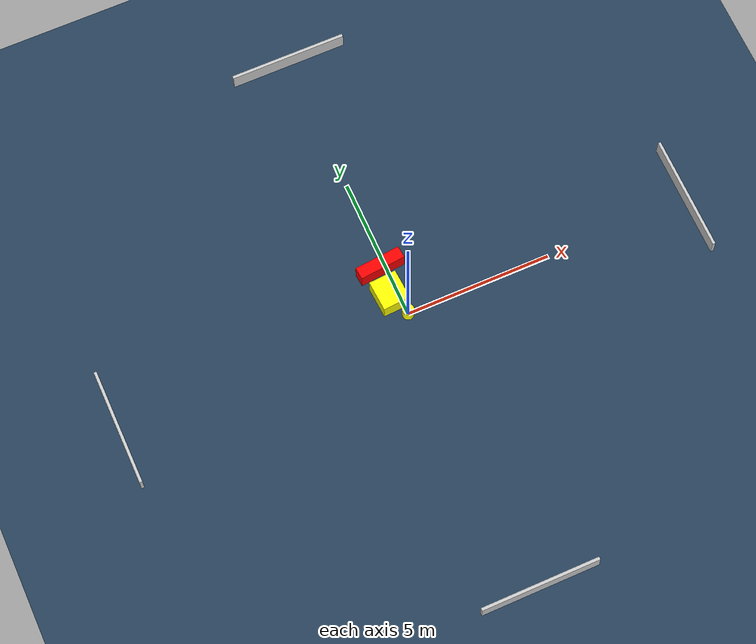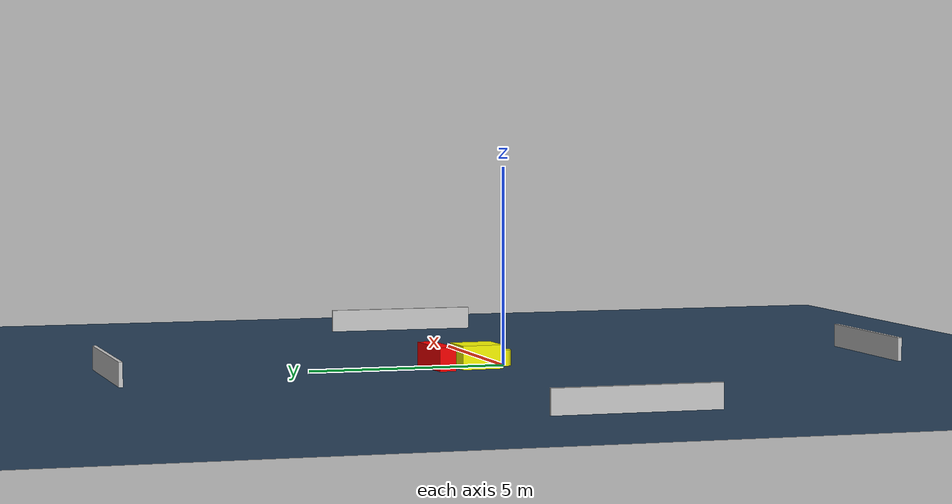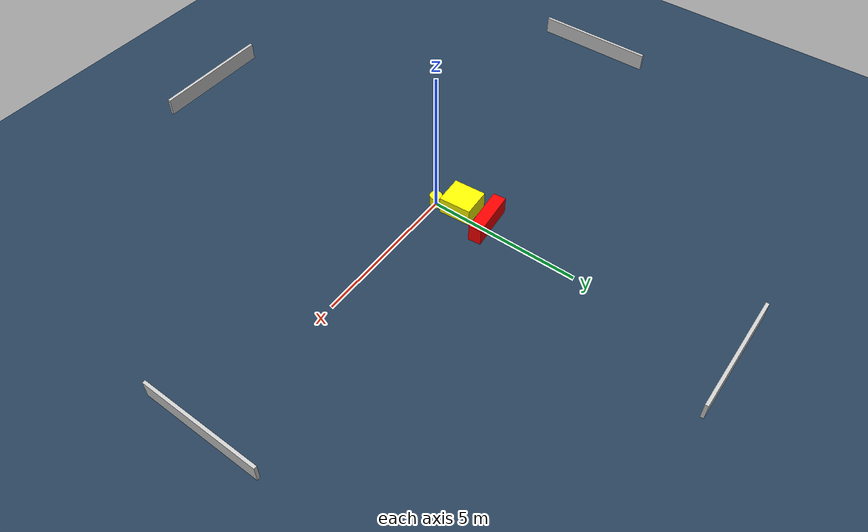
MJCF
<?xml version="1.0" ?>
<mujoco model="generated_environment">
  <option timestep="0.01" integrator="RK4" cone="elliptic"/>
  <default>
    <geom density="1"/>
  </default>
  <asset>
    <texture builtin="gradient" height="3072" name="skybox" rgb1="0.3 0.5 0.7" rgb2="0 0 0" type="skybox" width="512"/>
    <texture builtin="checker" height="300" name="groundplane" rgb1="0.2 0.3 0.4" rgb2="0.1 0.2 0.3" type="2d" width="300"/>
    <material name="groundplane" reflectance="0.2" texrepeat="5 5" texture="groundplane"/>
  </asset>
  <worldbody>
    <light dir="0 0 -1" directional="true" pos="0 0 1.5"/>
    <geom condim="3" friction="0.5 0.005 0.001" material="groundplane" name="floor" pos="0 0 0" size="0 0 0.05" type="plane"/>
    <body name="walls">
      <geom name="wall_1" condim="4" pos="-10.0 0.0 0.3" rgba="0.800000011920929 0.800000011920929 0.800000011920929 1.0" size="0.05 2.0 0.3" type="box"/>
      <geom name="wall_2" condim="4" pos="10.0 0.0 0.3" rgba="0.800000011920929 0.800000011920929 0.800000011920929 1.0" size="0.05 2.0 0.3" type="box"/>
      <geom name="wall_3" condim="4" pos="0.0 -10.0 0.3" rgba="0.800000011920929 0.800000011920929 0.800000011920929 1.0" size="2.0 0.05 0.3" type="box"/>
      <geom name="wall_4" condim="4" pos="0.0 10.0 0.3" rgba="0.800000011920929 0.800000011920929 0.800000011920929 1.0" size="2.0 0.05 0.3" type="box"/>
    </body>
    <body name="robot">
      <joint name="joint_x" type="slide" pos="0 0 0" axis="1 0 0"/>
      <joint name="joint_y" type="slide" pos="0 0 0" axis="0 1 0"/>
      <geom name="robot" type="cylinder" pos="0.0 0.0 0.2" size="0.2 0.2 0.0" mass="5.0" friction="1.0 0.005 0.0001" condim="4" rgba="1.0 1.0 0.0 1.0"/>
    </body>
    <body name="obstacle_1_movable">
      <geom name="obstacle_1_movable" condim="4" pos="-0.30706686632217045 0.7895158742144955 0.3" euler="0 0 273.63314272432893" friction="0.0 0.005 0.001" rgba="1.0 1.0 0.0 1.0" size="0.5290436445934301 0.4716799433061583 0.3" type="box" mass="0.1"/>
      <joint type="free"/>
    </body>
    <body name="obstacle_2_static">
      <geom name="obstacle_2_static" condim="4" pos="-0.2033696066812283 1.7980894028357046 0.3" euler="0 0 275.54457560953887" friction="0.0 0.005 0.001" rgba="1.0 0.0 0.0 1.0" size="0.20881481998860263 0.7908405212724312 0.3" type="box"/>
    </body>
  </worldbody>
  <actuator>
    <motor name="actuator_x" joint="joint_x" gear="1" ctrlrange="-1 1"/>
    <motor name="actuator_y" joint="joint_y" gear="1" ctrlrange="-1 1"/>
  </actuator>
</mujoco>
